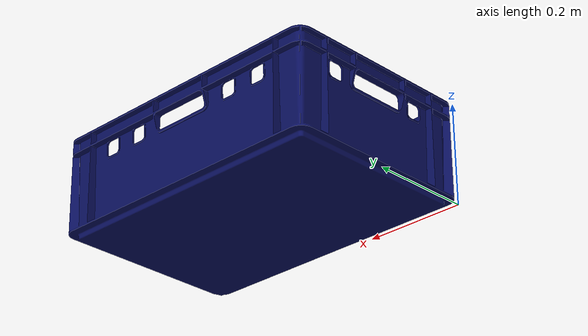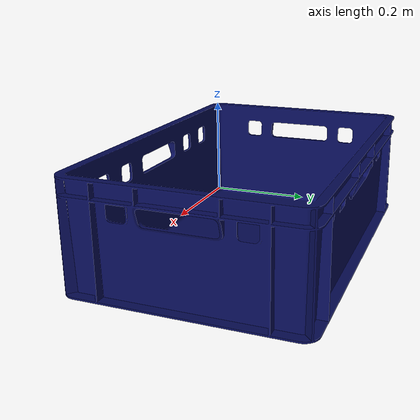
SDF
<sdf version="1.6">
  <model name="stacking_crate_isaac">
    <static>false</static>
    <link name="new_link">
      <collision name="Cube">
        <pose>0.00000 0.00000 0.00000 0.00000 0.00000 0.00000</pose>
        <geometry>
          <mesh>
            <uri>model://stacking_crate_isaac/meshes/Cube.001.dae</uri>
            <scale>1.00000 1.00000 1.00000</scale>
          </mesh>
        </geometry>
      </collision>

      <collision name="Cube.001">
        <pose>0.00000 0.00000 0.00000 0.00000 0.00000 0.00000</pose>
        <geometry>
          <mesh>
            <uri>model://stacking_crate_isaac/meshes/Cube.002.dae</uri>
            <scale>1.00000 1.00000 1.00000</scale>
          </mesh>
        </geometry>
      </collision>

      <collision name="Cube.002">
        <pose>0.00000 0.00000 0.00000 0.00000 0.00000 0.00000</pose>
        <geometry>
          <mesh>
            <uri>model://stacking_crate_isaac/meshes/Cube.004.dae</uri>
            <scale>1.00000 1.00000 1.00000</scale>
          </mesh>
        </geometry>
      </collision>

      <collision name="Cube.003">
        <pose>0.00000 0.00000 0.00000 0.00000 0.00000 0.00000</pose>
        <geometry>
          <mesh>
            <uri>model://stacking_crate_isaac/meshes/Cube.005.dae</uri>
            <scale>1.00000 1.00000 1.00000</scale>
          </mesh>
        </geometry>
      </collision>

      <collision name="Cube.004">
        <pose>0.00000 0.00000 0.00000 0.00000 0.00000 0.00000</pose>
        <geometry>
          <mesh>
            <uri>model://stacking_crate_isaac/meshes/Cube.006.dae</uri>
            <scale>1.00000 1.00000 1.00000</scale>
          </mesh>
        </geometry>
      </collision>

      <inertial>
        <pose>0.00000 0.00000 0.00000 0.00000 0.00000 0.00000</pose>
        <mass>1.00000</mass>
        <inertia>
          <ixx>0.01075</ixx>
          <ixy>0.00000</ixy>
          <ixz>-0.00000</ixz>
          <iyy>0.02074</iyy>
          <iyz>0.00000</iyz>
          <izz>0.02616</izz>
        </inertia>
      </inertial>

      <visual name="node0">
        <pose>0.00000 0.00000 0.00000 0.00000 0.00000 0.00000</pose>
        <geometry>
          <mesh>
            <uri>model://stacking_crate_isaac/meshes/Body.dae</uri>
            <scale>1.00000 1.00000 1.00000</scale>
          </mesh>
        </geometry>
        <material>
          <diffuse>0.03137 0.05098 0.35294 1.00000</diffuse>
          <specular>1.00000 1.00000 1.00000 0.20392</specular>
        </material>
      </visual>
    </link>
  </model>
</sdf>
